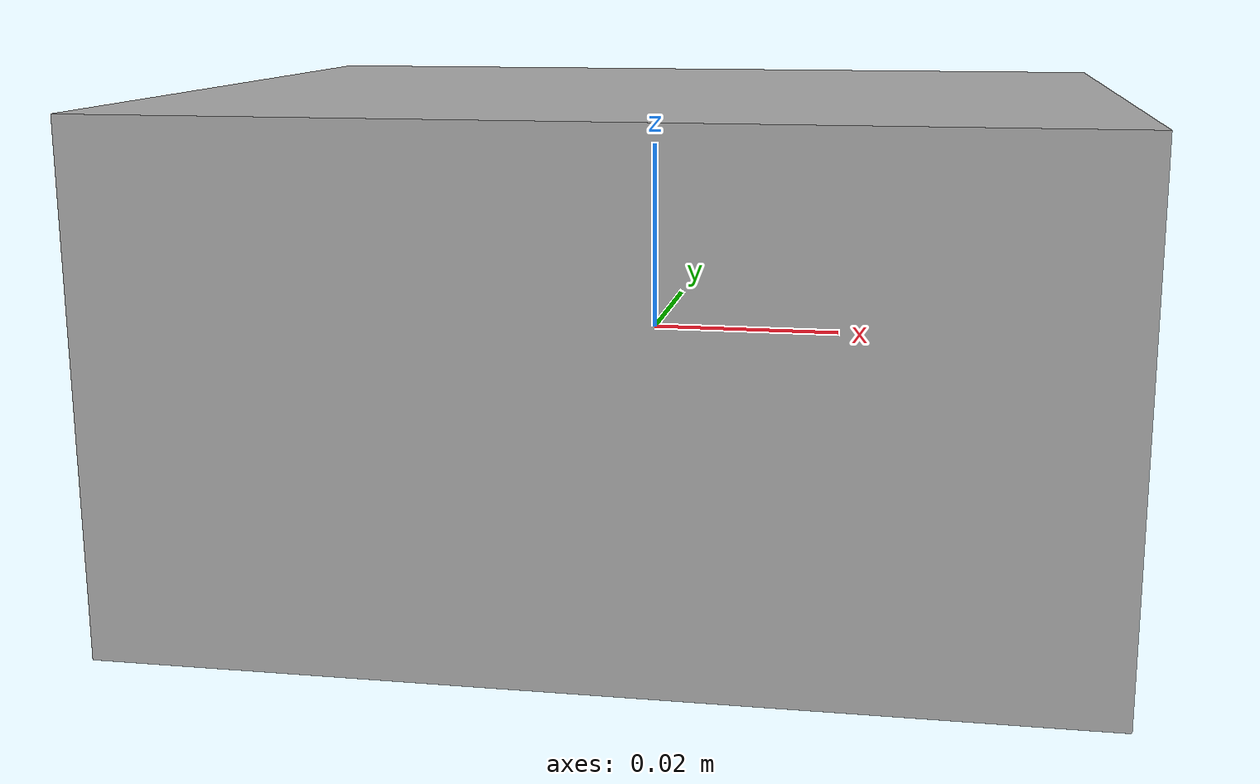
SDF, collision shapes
<?xml version="1.0"?>
<sdf version="1.7">
  <model name="010_potted_meat_can">
    <link name="base_link_meat">
      <inertial>
        <mass>0.370000</mass>
        <inertia>
          <ixx>0.000317</ixx>
          <ixy>0</ixy>
          <ixz>0</ixz>
          <iyy>0.000421</iyy>
          <iyz>0</iyz>
          <izz>0.000533</izz>
        </inertia>
      </inertial>
      <visual name="base_link_meat">
        <pose>0.034 0.039 0.025 1.57 0.052 0.0</pose>
        <geometry>
          <mesh>
            <uri>package://drake/manipulation/models/ycb/meshes/010_potted_meat_can_textured.obj</uri>
          </mesh>
        </geometry>
      </visual>
      <collision name="box_collision">
        <geometry>
          <box>
            <size>0.095600 0.077500 0.051600</size>
          </box>
        </geometry>
        <material>
          <diffuse>0 1 0 1.0</diffuse>
        </material>
      </collision>
      <collision name="point_collision1">
        <pose>0.048300 0.039250 0.026300 0 0 0 </pose>
        <geometry>
          <sphere>
            <radius>1e-7</radius>
          </sphere>
        </geometry>
      </collision>
      <collision name="point_collision2">
        <pose>0.048300 -0.039250 0.026300 0 0 0 </pose>
        <geometry>
          <sphere>
            <radius>1e-7</radius>
          </sphere>
        </geometry>
      </collision>
      <collision name="point_collision3">
        <pose>-0.048300 0.039250 0.026300 0 0 0 </pose>
        <geometry>
          <sphere>
            <radius>1e-7</radius>
          </sphere>
        </geometry>
      </collision>
      <collision name="point_collision4">
        <pose>-0.048300 -0.039250 0.026300 0 0 0 </pose>
        <geometry>
          <sphere>
            <radius>1e-7</radius>
          </sphere>
        </geometry>
      </collision>
      <collision name="point_collision5">
        <pose>0.048300 0.039250 -0.026300 0 0 0 </pose>
        <geometry>
          <sphere>
            <radius>1e-7</radius>
          </sphere>
        </geometry>
      </collision>
      <collision name="point_collision6">
        <pose>0.048300 -0.039250 -0.026300 0 0 0 </pose>
        <geometry>
          <sphere>
            <radius>1e-7</radius>
          </sphere>
        </geometry>
      </collision>
      <collision name="point_collision7">
        <pose>-0.048300 0.039250 -0.026300 0 0 0 </pose>
        <geometry>
          <sphere>
            <radius>1e-7</radius>
          </sphere>
        </geometry>
      </collision>
      <collision name="point_collision8">
        <pose>-0.048300 -0.039250 -0.026300 0 0 0 </pose>
        <geometry>
          <sphere>
            <radius>1e-7</radius>
          </sphere>
        </geometry>
      </collision>
    </link>
  </model>
</sdf>
